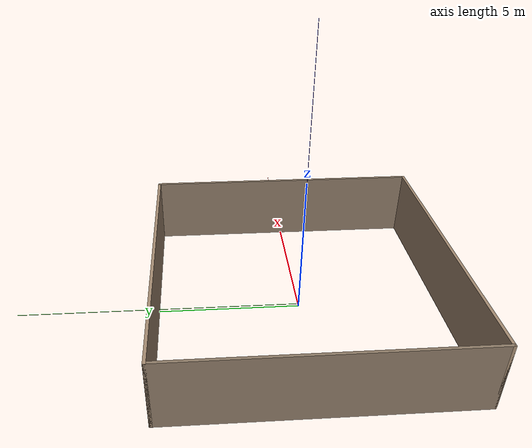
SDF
<sdf version="1.9">
 <world name="iris_runway_10x10_walls">
  <physics name="1ms" type="ignore">
   <max_step_size>0.001</max_step_size>
   <real_time_factor>1.0</real_time_factor>
  </physics>
  <plugin filename="gz-sim-physics-system" name="gz::sim::systems::Physics"/>
  <plugin filename="gz-sim-sensors-system" name="gz::sim::systems::Sensors">
   <render_engine>ogre2</render_engine>
  </plugin>
  <plugin filename="gz-sim-user-commands-system" name="gz::sim::systems::UserCommands"/>
  <plugin filename="gz-sim-scene-broadcaster-system" name="gz::sim::systems::SceneBroadcaster"/>
  <plugin filename="gz-sim-imu-system" name="gz::sim::systems::Imu"/>
  <plugin filename="gz-sim-navsat-system" name="gz::sim::systems::NavSat"/>
  <scene><ambient>1.0 1.0 1.0</ambient><background>0.8 0.8 0.8</background></scene>
  <spherical_coordinates>
   <latitude_deg>-35.363262</latitude_deg>
   <longitude_deg>149.165237</longitude_deg>
   <elevation>584</elevation>
   <heading_deg>0</heading_deg>
   <surface_model>EARTH_WGS84</surface_model>
  </spherical_coordinates>
  <light type="directional" name="sun">
   <pose>0 0 10 0 0 0</pose>
   <diffuse>0.8 0.8 0.8 1</diffuse>
   <specular>0.8 0.8 0.8 1</specular>
   <attenuation>
    <range>1000</range>
    <constant>0.9</constant>
    <linear>0.01</linear>
    <quadratic>0.001</quadratic>
   </attenuation>
   <direction>-0.5 0.1 -0.9</direction>
  </light>
  <model name="axes">
   <static>1</static>
   <link name="link">
    <visual name="r">
     <cast_shadows>0</cast_shadows>
     <pose>5 0 0.1 0 0 0</pose>
     <geometry><box><size>10 0.01 0.01</size></box></geometry>
     <material>
      <ambient>1 0 0 0.8</ambient>
      <diffuse>1 0 0 0.8</diffuse>
      <emissive>1 0 0 0.8</emissive>
      <specular>0.5 0.5 0.5 0.8</specular>
     </material>
    </visual>
    <visual name="g">
     <cast_shadows>0</cast_shadows>
     <pose>0 5 0.1 0 0 0</pose>
     <geometry><box><size>0.01 10 0.01</size></box></geometry>
     <material>
      <ambient>0 1 0 0.8</ambient>
      <diffuse>0 1 0 0.8</diffuse>
      <emissive>0 1 0 0.8</emissive>
      <specular>0.5 0.5 0.5 0.8</specular>
     </material>
    </visual>
    <visual name="b">
     <cast_shadows>0</cast_shadows>
     <pose>0 0 5.1 0 0 0</pose>
     <geometry><box><size>0.01 0.01 10</size></box></geometry>
     <material>
      <ambient>0 0 1 0.8</ambient>
      <diffuse>0 0 1 0.8</diffuse>
      <emissive>0 0 1 0.8</emissive>
      <specular>0.5 0.5 0.5 0.8</specular>
     </material>
    </visual>
    <sensor name="navsat_sensor" type="navsat"><always_on>1</always_on><update_rate>1</update_rate></sensor>
   </link>
  </model>
  <model name="wall_north">
   <static>true</static>
   <pose>0 5.05 1.25 0 0 0</pose>
   <link name="link">
    <collision name="collision"><geometry><box><size>10.2 0.1 2.5</size></box></geometry></collision>
    <visual name="visual">
     <geometry><box><size>10.2 0.1 2.5</size></box></geometry>
     <material><ambient>0.55 0.45 0.35 1</ambient><diffuse>0.65 0.55 0.45 1</diffuse></material>
    </visual>
   </link>
  </model>
  <model name="wall_south">
   <static>true</static>
   <pose>0 -5.05 1.25 0 0 0</pose>
   <link name="link">
    <collision name="collision"><geometry><box><size>10.2 0.1 2.5</size></box></geometry></collision>
    <visual name="visual">
     <geometry><box><size>10.2 0.1 2.5</size></box></geometry>
     <material><ambient>0.55 0.45 0.35 1</ambient><diffuse>0.65 0.55 0.45 1</diffuse></material>
    </visual>
   </link>
  </model>
  <model name="wall_east">
   <static>true</static>
   <pose>5.05 0 1.25 0 0 0</pose>
   <link name="link">
    <collision name="collision"><geometry><box><size>0.1 10.2 2.5</size></box></geometry></collision>
    <visual name="visual">
     <geometry><box><size>0.1 10.2 2.5</size></box></geometry>
     <material><ambient>0.45 0.38 0.30 1</ambient><diffuse>0.55 0.48 0.40 1</diffuse></material>
    </visual>
   </link>
  </model>
  <model name="wall_west">
   <static>true</static>
   <pose>-5.05 0 1.25 0 0 0</pose>
   <link name="link">
    <collision name="collision"><geometry><box><size>0.1 10.2 2.5</size></box></geometry></collision>
    <visual name="visual">
     <geometry><box><size>0.1 10.2 2.5</size></box></geometry>
     <material><ambient>0.45 0.38 0.30 1</ambient><diffuse>0.55 0.48 0.40 1</diffuse></material>
    </visual>
   </link>
  </model>
 </world>
</sdf>
